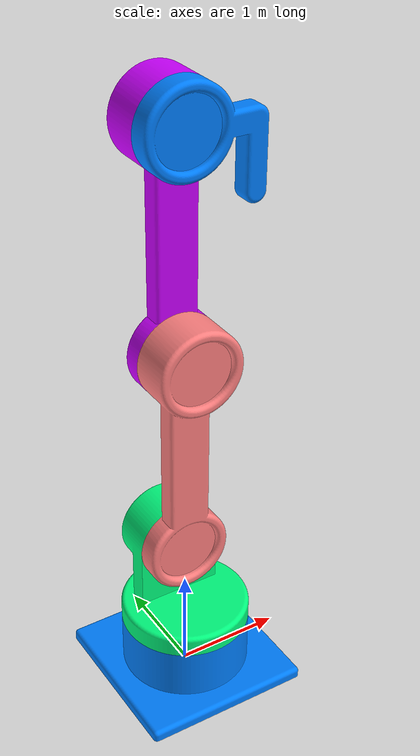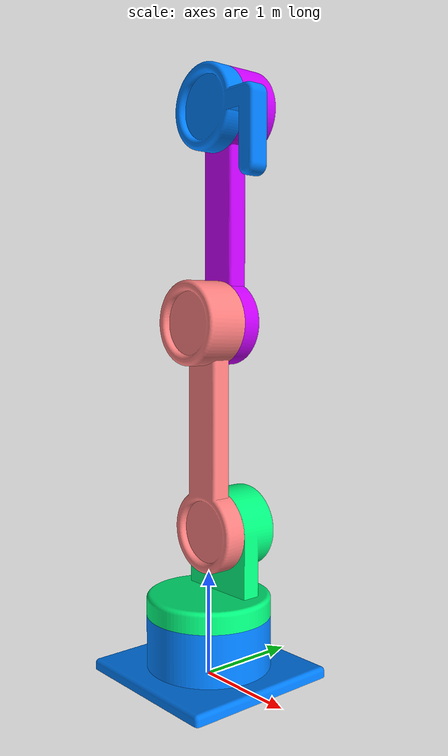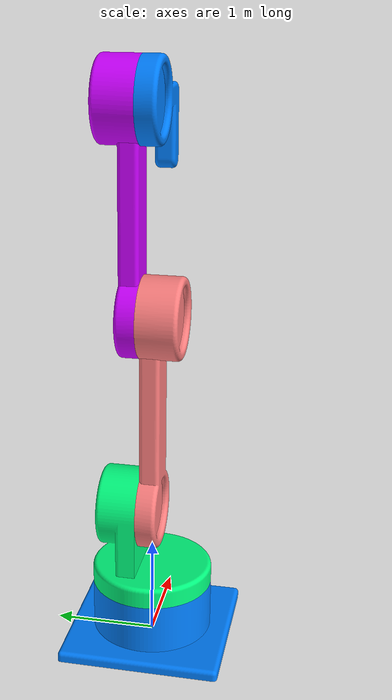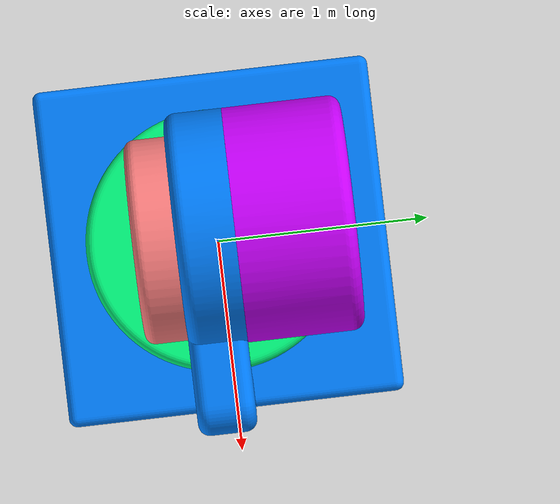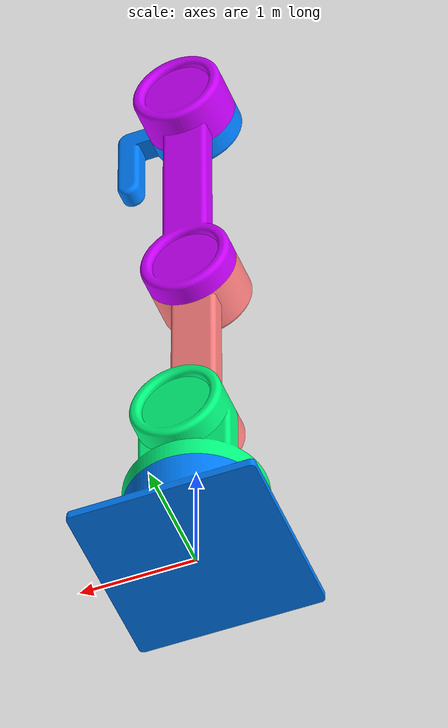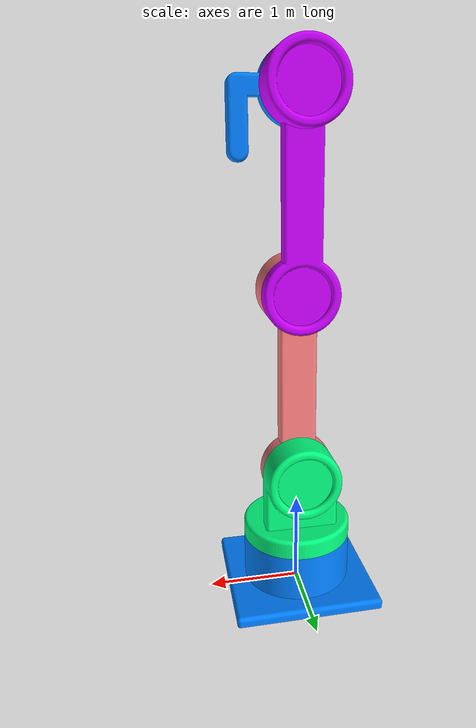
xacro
<?xml version="1.0"?>
<robot xmlns:xacro="http://www.ros.org/wiki/xacro" name="sketch_follower_3d_4dof">
    <xacro:include filename="$(find sketch_follower)/robot_description/urdf/helpers.xacro"/>

    <xacro:property name="sf" value="0.02"/>

    <gazebo>
        <plugin filename="libgazebo_ros_control.so" name="gazebo_ros_control" />
    </gazebo>

    <link name="world" />

    <link name="base">
        <xacro:inertial m="1.2" x="1.6" y="1.6" z="0.6" oy="0" oz="0.3" />
        <visual>
            <origin xyz="0.0 0.0 0.0" rpy="0.0 0.0 0.0"/>
            <geometry>
                 <mesh filename="package://sketch_follower/robot_description/meshes/3d_base_link.stl" scale="${sf} ${sf} ${sf}"/>
            </geometry>
            <material name="blue" />
        </visual>
        <collision>
            <origin xyz="0.0 0.0 0.0" rpy="0.0 0.0 0.0"/>
            <geometry>
                 <mesh filename="package://sketch_follower/robot_description/meshes/3d_base_link.stl" scale="${sf} ${sf} ${sf}"/>
            </geometry>
        </collision>
    </link>

    <gazebo reference="base">
        <material>Gazebo/White</material>
    </gazebo>

    <joint name="base_joint" type="fixed">
        <origin xyz="0.0 0.0 0" rpy="0.0 0.0 0"/>
        <parent link="world"/>
        <child link="base"/>
    </joint>

    <link name="base_arm_slot">
        <xacro:inertial m="1.2" x="1.2" y="1.2" z="0.8" oy="0" oz="0.4" />
        <visual>
            <origin xyz="0.0 0.0 0.0" rpy="0.0 0.0 0.0"/>
            <geometry>
                 <mesh filename="package://sketch_follower/robot_description/meshes/3d_base_arm_slot.stl" scale="${sf} ${sf} ${sf}"/>
            </geometry>
            <material name="green" />
        </visual>
        <collision>
            <origin xyz="0.0 0.0 0.0" rpy="0.0 0.0 0.0"/>
            <geometry>
                 <mesh filename="package://sketch_follower/robot_description/meshes/3d_base_arm_slot.stl" scale="${sf} ${sf} ${sf}"/>
            </geometry>
        </collision>
    </link>

    <gazebo reference="base_arm_slot">
        <material>Gazebo/Black</material>
    </gazebo>

    <joint name="base_arm_slot_joint" type="continuous">
        <origin xyz="0.0 0.0 0.6" rpy="0.0 0.0 0.0"/>
        <parent link="base"/>
        <child link="base_arm_slot"/>
        <axis xyz="0.0 0.0 1.0"/>
        <dynamics damping="2.0" friction="2.0"/>
    </joint>
    <xacro:transmission name="base_arm_slot_joint" />

    <link name="arm_link_1">
        <xacro:inertial m="1.2" x="0.7" y="0.4" z="2" oy="0" oz="1" />
        <visual>
            <origin xyz="0.0 0.0 0.0" rpy="1.57079 0.0 3.141592"/>
            <geometry>
                 <mesh filename="package://sketch_follower/robot_description/meshes/3d_arm_link.stl" scale="${sf} ${sf} ${sf}"/>
            </geometry>
            <material name="red" />
        </visual>
        <collision>
            <origin xyz="0.0 0.0 0.0" rpy="1.57079 0.0 3.141592"/>
            <geometry>
                 <mesh filename="package://sketch_follower/robot_description/meshes/3d_arm_link.stl" scale="${sf} ${sf} ${sf}"/>
            </geometry>
        </collision>
    </link>

    <gazebo reference="arm_link_1">
        <material>Gazebo/White</material>
    </gazebo>

    <joint name="arm_link_1_joint" type="continuous">
        <origin xyz="0.0 -0.1 0.8" rpy="0.0 0.0 0.0"/>
        <parent link="base_arm_slot"/>
        <child link="arm_link_1"/>
        <axis xyz="0.0 1.0 0.0"/>
        <dynamics damping="2.0" friction="2.0"/>
    </joint>
    <xacro:transmission name="arm_link_1_joint" />

    <link name="arm_link_2">
        <xacro:inertial m="1.2" x="0.7" y="0.4" z="2" oy="0" oz="1" />
        <visual>
            <origin xyz="0.0 0.0 0.0" rpy="1.57079 0.0 0.0"/>
            <geometry>
                 <mesh filename="package://sketch_follower/robot_description/meshes/3d_arm_link.stl" scale="${sf} ${sf} ${sf}"/>
            </geometry>
            <material name="purple" />
        </visual>
        <collision>
            <origin xyz="0.0 0.0 0.0" rpy="1.57079 0.0 0.0"/>
            <geometry>
                 <mesh filename="package://sketch_follower/robot_description/meshes/3d_arm_link.stl" scale="${sf} ${sf} ${sf}"/>
            </geometry>
        </collision>
    </link>

    <gazebo reference="arm_link_2">
        <material>Gazebo/Black</material>
    </gazebo>

    <joint name="arm_link_2_joint" type="continuous">
        <origin xyz="0.0 0.4 2.0" rpy="0.0 0.0 0.0"/>
        <parent link="arm_link_1"/>
        <child link="arm_link_2"/>
        <axis xyz="0.0 1.0 0.0"/>
        <dynamics damping="2.0" friction="2.0"/>
    </joint>
    <xacro:transmission name="arm_link_2_joint" />

    <link name="end_effector">
        <xacro:inertial m="1.2" x="1" y="0.4" z="1" oy="0" oz="0.5" />
        <visual>
            <origin xyz="0.0 0.0 0.0" rpy="1.57079 0.0 3.141592"/>
            <geometry>
                 <mesh filename="package://sketch_follower/robot_description/meshes/3d_end_effector.stl" scale="${sf} ${sf} ${sf}"/>
            </geometry>
            <material name="blue" />
        </visual>
        <collision>
            <origin xyz="0.0 0.0 0.0" rpy="1.57079 0.0 3.141592"/>
            <geometry>
                 <mesh filename="package://sketch_follower/robot_description/meshes/3d_end_effector.stl" scale="${sf} ${sf} ${sf}"/>
            </geometry>
        </collision>
    </link>

    <gazebo reference="end_effector">
        <material>Gazebo/White</material>
    </gazebo>

    <joint name="end_effector_joint" type="continuous">
        <origin xyz="0.0 -0.4 2.0" rpy="0.0 0.0 0.0"/>
        <parent link="arm_link_2"/>
        <child link="end_effector"/>
        <axis xyz="0.0 1.0 0.0"/>
        <dynamics damping="2.0" friction="2.0"/>
    </joint>
    <xacro:transmission name="end_effector_joint" />

</robot>

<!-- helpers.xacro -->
<robot xmlns:xacro="http://www.ros.org/wiki/xacro">

    <xacro:property name="sf" value="0.005"/>

    <material name="blue">
        <color rgba="0 0.5 1 1" />
    </material>
    <material name="green">
        <color rgba="0 1 0.5 1" />
    </material>
    <material name="red">
        <color rgba="1 0.5 0.5 1" />
    </material>
    <material name="purple">
        <color rgba="0.8 0 1 1" />
    </material>

    <xacro:macro name="link" params="index material">
        <link name="link_${index}">
            <xacro:inertial m="0.3" x="0.5" y="2" z="0.1" oy="0.75" oz="0.05" />
            <visual>
                <origin xyz="0 0.0 0.0" rpy="0.0 0.0 0.0"/>
                <geometry>
                    <mesh filename="package://sketch_follower/robot_description/meshes/2d_link.stl" scale="${sf} ${sf} ${sf}"/>
                </geometry>
                <material name="${material}" />
            </visual>
            <collision>
                <origin xyz="0.0 0.0 0.0" rpy="0.0 0.0 0.0"/>
                <geometry>
                    <mesh filename="package://sketch_follower/robot_description/meshes/2d_link.stl" scale="${sf} ${sf} ${sf}"/>
                </geometry>
            </collision>
        </link>
    </xacro:macro>

    <xacro:macro name="inertial" params="m x y z oy oz" >
        <inertial>
            <origin xyz="0 ${oy} ${oz}" rpy="0.0 0.0 0.0"/>
            <mass value="${m}"/>
            <inertia    ixx="${(1/12) * m * (z*z + y*y)}" ixy="0.0" ixz="0.0"
                        iyy="${(1/12) * m * (x*x + z*z)}" iyz="0.0"
                        izz="${(1/12) * m * (y*y + x*x)}"/>
        </inertial>
    </xacro:macro>

    <xacro:macro name="transmission" params="name">
        <transmission name='${name}_transmission'>
            <type>transmission_interface/SimpleTransmission</type>
                <joint name='${name}'>
                    <hardwareInterface>hardware_interface/VelocityJointInterface</hardwareInterface>
                </joint>
            <actuator name='${name}_actuator'>
                <hardwareInterface>hardware_interface/VelocityJointInterface</hardwareInterface>
                <mechanicalReduction>1</mechanicalReduction>
            </actuator>
        </transmission>
    </xacro:macro>

</robot>
